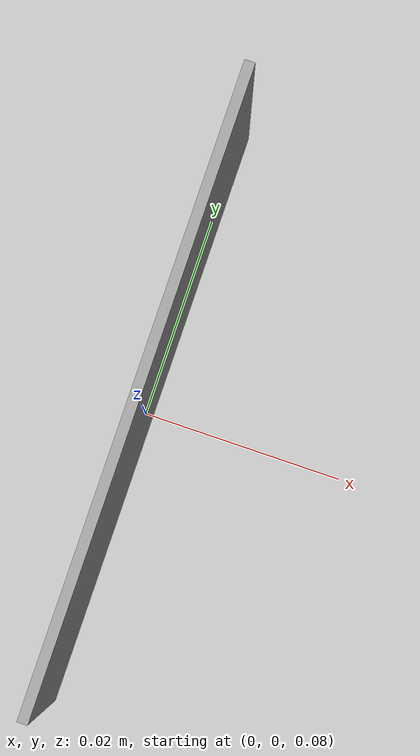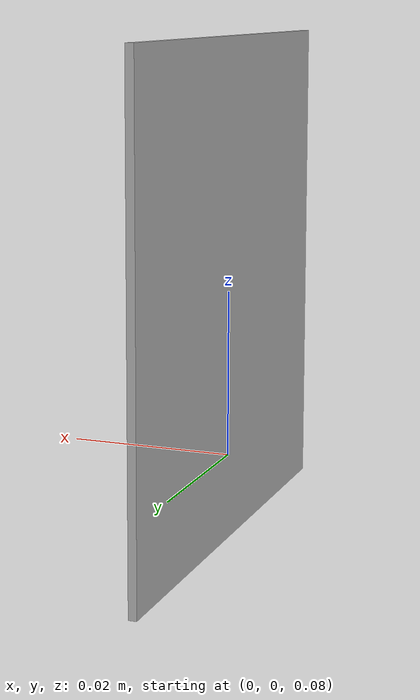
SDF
<?xml version="1.0" ?>
<sdf version="1.5">
  <model name="Tag3">
    <static>true</static>
    <link name="link">
      <pose>0 0 0.1 0 0 1.57</pose>
      <collision name="collision">
        <geometry>
          <box>
            <size>.06 0.001 .06</size>
          </box>
        </geometry>
      </collision>
      <visual name="visual">
        <cast_shadows>false</cast_shadows>
        <geometry>
          <box>
            <size>.06 0.001 .06</size>
          </box>
        </geometry>
        <material>
          <script>
            <uri>model://Tag3/materials/scripts</uri>
            <uri>model://Tag3/materials/textures</uri>
            <name>vrc/Tag3</name>
          </script>
        </material>
      </visual>
    </link>
  </model>
</sdf>
